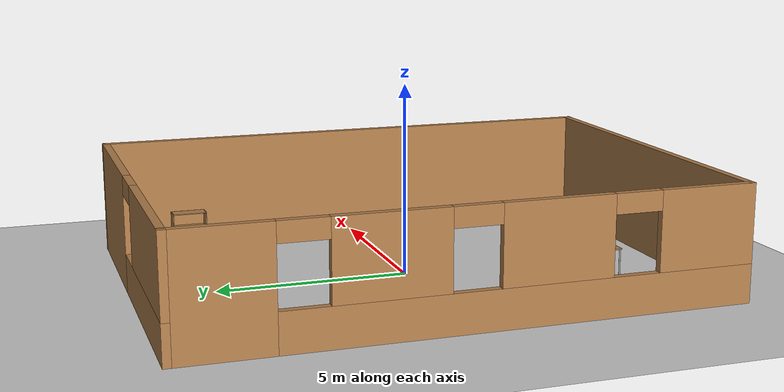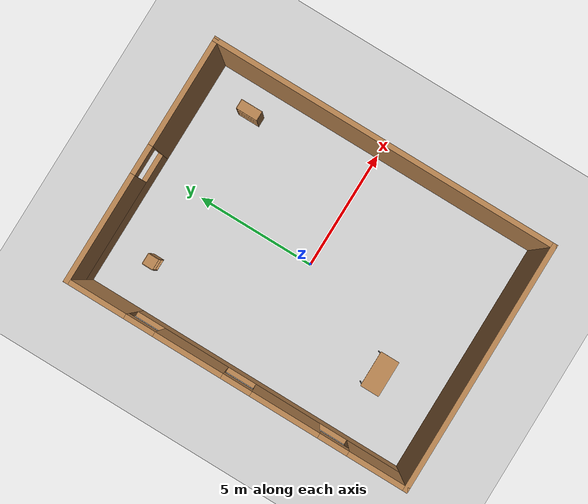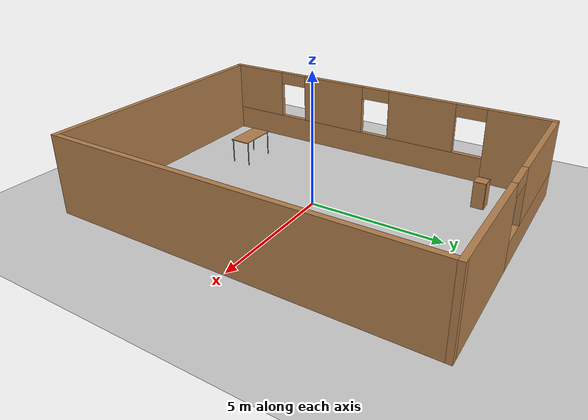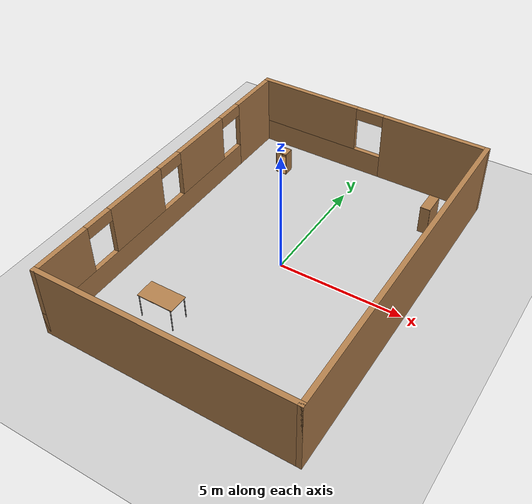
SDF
<sdf version="1.7">
 <world name="default">
  <light name="sun" type="directional">
   <pose>0 0 10 0 -0 0</pose>
   <diffuse>0.8 0.8 0.8 1</diffuse>
   <specular>0.2 0.2 0.2 1</specular>
   <attenuation>
    <range>1000</range>
    <constant>0.9</constant>
    <linear>0.01</linear>
    <quadratic>0.001</quadratic>
   </attenuation>
   <direction>-0.5 0.1 -0.9</direction>
   <spot><inner_angle>0</inner_angle><outer_angle>0</outer_angle><falloff>0</falloff></spot>
  </light>
  <model name="ground_plane">
   <static>1</static>
   <link name="link">
    <collision name="collision">
     <geometry><plane><normal>0 0 1</normal><size>100 100</size></plane></geometry>
     <surface>
      <contact><collide_bitmask>65535</collide_bitmask></contact>
      <friction><ode><mu>100</mu><mu2>50</mu2></ode></friction>
     </surface>
    </collision>
    <visual name="visual">
     <cast_shadows>0</cast_shadows>
     <geometry><plane><normal>0 0 1</normal><size>100 100</size></plane></geometry>
     <material>
      <script><uri>file://media/materials/scripts/gazebo.material</uri><name>Gazebo/Grey</name></script>
     </material>
    </visual>
   </link>
  </model>
  <gravity>0 0 -9.8</gravity>
  <magnetic_field>6e-06 2.3e-05 -4.2e-05</magnetic_field>
  <atmosphere type="adiabatic"/>
  <physics type="ode">
   <max_step_size>0.001</max_step_size>
   <real_time_factor>1</real_time_factor>
   <real_time_update_rate>1000</real_time_update_rate>
  </physics>
  <scene><ambient>0.4 0.4 0.4 1</ambient><background>0.7 0.7 0.7 1</background><shadows>1</shadows></scene>
  <audio><device>default</device></audio>
  <spherical_coordinates>
   <surface_model>EARTH_WGS84</surface_model>
   <latitude_deg>0</latitude_deg>
   <longitude_deg>0</longitude_deg>
   <elevation>0</elevation>
   <heading_deg>0</heading_deg>
  </spherical_coordinates>
  <model name="class_room">
   <link name="Wall_5">
    <pose>0 7 0 0 -0 3.14159</pose>
    <visual name="Wall_5_Visual_0">
     <pose>-2.85 0 1.5 0 -0 0</pose>
     <geometry><box><size>4.5 0.2 3</size></box></geometry>
     <material>
      <script><uri>file://media/materials/scripts/gazebo.material</uri><name>Gazebo/Wood</name></script>
      <ambient>1 1 1 1</ambient>
     </material>
     <meta><layer>0</layer></meta>
    </visual>
    <collision name="Wall_5_Collision_0">
     <geometry><box><size>4.5 0.2 3</size></box></geometry>
     <pose>-2.85 0 1.5 0 -0 0</pose>
    </collision>
    <visual name="Wall_5_Visual_1">
     <pose>2.25 0 0.5 0 -0 0</pose>
     <geometry><box><size>5.7 0.2 1</size></box></geometry>
     <material>
      <script><uri>file://media/materials/scripts/gazebo.material</uri><name>Gazebo/Wood</name></script>
      <ambient>1 1 1 1</ambient>
     </material>
     <meta><layer>0</layer></meta>
    </visual>
    <collision name="Wall_5_Collision_1">
     <geometry><box><size>5.7 0.2 1</size></box></geometry>
     <pose>2.25 0 0.5 0 -0 0</pose>
    </collision>
    <visual name="Wall_5_Visual_2">
     <pose>2.85 0 2 0 -0 0</pose>
     <geometry><box><size>4.5 0.2 2</size></box></geometry>
     <material>
      <script><uri>file://media/materials/scripts/gazebo.material</uri><name>Gazebo/Wood</name></script>
      <ambient>1 1 1 1</ambient>
     </material>
     <meta><layer>0</layer></meta>
    </visual>
    <collision name="Wall_5_Collision_2">
     <geometry><box><size>4.5 0.2 2</size></box></geometry>
     <pose>2.85 0 2 0 -0 0</pose>
    </collision>
    <visual name="Wall_5_Visual_3">
     <pose>0 0 2.75 0 -0 0</pose>
     <geometry><box><size>1.2 0.2 0.5</size></box></geometry>
     <material>
      <script><uri>file://media/materials/scripts/gazebo.material</uri><name>Gazebo/Wood</name></script>
      <ambient>1 1 1 1</ambient>
     </material>
     <meta><layer>0</layer></meta>
    </visual>
    <collision name="Wall_5_Collision_3">
     <geometry><box><size>1.2 0.2 0.5</size></box></geometry>
     <pose>0 0 2.75 0 -0 0</pose>
    </collision>
   </link>
   <link name="Wall_6">
    <pose>-5 0 0 0 -0 -1.5708</pose>
    <visual name="Wall_6_Visual_0">
     <pose>-5.85 0 1.5 0 -0 0</pose>
     <geometry><box><size>2.5 0.2 3</size></box></geometry>
     <material>
      <script><uri>file://media/materials/scripts/gazebo.material</uri><name>Gazebo/Wood</name></script>
      <ambient>1 1 1 1</ambient>
     </material>
     <meta><layer>0</layer></meta>
    </visual>
    <collision name="Wall_6_Collision_0">
     <geometry><box><size>2.5 0.2 3</size></box></geometry>
     <pose>-5.85 0 1.5 0 -0 0</pose>
    </collision>
    <visual name="Wall_6_Visual_1">
     <pose>1.25 0 0.5 0 -0 0</pose>
     <geometry><box><size>11.7 0.2 1</size></box></geometry>
     <material>
      <script><uri>file://media/materials/scripts/gazebo.material</uri><name>Gazebo/Wood</name></script>
      <ambient>1 1 1 1</ambient>
     </material>
     <meta><layer>0</layer></meta>
    </visual>
    <collision name="Wall_6_Collision_1">
     <geometry><box><size>11.7 0.2 1</size></box></geometry>
     <pose>1.25 0 0.5 0 -0 0</pose>
    </collision>
    <visual name="Wall_6_Visual_2">
     <pose>-2 0 2 0 -0 0</pose>
     <geometry><box><size>2.8 0.2 2</size></box></geometry>
     <material>
      <script><uri>file://media/materials/scripts/gazebo.material</uri><name>Gazebo/Wood</name></script>
      <ambient>1 1 1 1</ambient>
     </material>
     <meta><layer>0</layer></meta>
    </visual>
    <collision name="Wall_6_Collision_2">
     <geometry><box><size>2.8 0.2 2</size></box></geometry>
     <pose>-2 0 2 0 -0 0</pose>
    </collision>
    <visual name="Wall_6_Visual_3">
     <pose>2 0 2 0 -0 0</pose>
     <geometry><box><size>2.8 0.2 2</size></box></geometry>
     <material>
      <script><uri>file://media/materials/scripts/gazebo.material</uri><name>Gazebo/Wood</name></script>
      <ambient>1 1 1 1</ambient>
     </material>
     <meta><layer>0</layer></meta>
    </visual>
    <collision name="Wall_6_Collision_3">
     <geometry><box><size>2.8 0.2 2</size></box></geometry>
     <pose>2 0 2 0 -0 0</pose>
    </collision>
    <visual name="Wall_6_Visual_4">
     <pose>5.85 0 2 0 -0 0</pose>
     <geometry><box><size>2.5 0.2 2</size></box></geometry>
     <material>
      <script><uri>file://media/materials/scripts/gazebo.material</uri><name>Gazebo/Wood</name></script>
      <ambient>1 1 1 1</ambient>
     </material>
     <meta><layer>0</layer></meta>
    </visual>
    <collision name="Wall_6_Collision_4">
     <geometry><box><size>2.5 0.2 2</size></box></geometry>
     <pose>5.85 0 2 0 -0 0</pose>
    </collision>
    <visual name="Wall_6_Visual_5">
     <pose>-4 0 2.75 0 -0 0</pose>
     <geometry><box><size>1.2 0.2 0.5</size></box></geometry>
     <material>
      <script><uri>file://media/materials/scripts/gazebo.material</uri><name>Gazebo/Wood</name></script>
      <ambient>1 1 1 1</ambient>
     </material>
     <meta><layer>0</layer></meta>
    </visual>
    <collision name="Wall_6_Collision_5">
     <geometry><box><size>1.2 0.2 0.5</size></box></geometry>
     <pose>-4 0 2.75 0 -0 0</pose>
    </collision>
    <visual name="Wall_6_Visual_6">
     <pose>0 0 2.75 0 -0 0</pose>
     <geometry><box><size>1.2 0.2 0.5</size></box></geometry>
     <material>
      <script><uri>file://media/materials/scripts/gazebo.material</uri><name>Gazebo/Wood</name></script>
      <ambient>1 1 1 1</ambient>
     </material>
     <meta><layer>0</layer></meta>
    </visual>
    <collision name="Wall_6_Collision_6">
     <geometry><box><size>1.2 0.2 0.5</size></box></geometry>
     <pose>0 0 2.75 0 -0 0</pose>
    </collision>
    <visual name="Wall_6_Visual_7">
     <pose>4 0 2.75 0 -0 0</pose>
     <geometry><box><size>1.2 0.2 0.5</size></box></geometry>
     <material>
      <script><uri>file://media/materials/scripts/gazebo.material</uri><name>Gazebo/Wood</name></script>
      <ambient>1 1 1 1</ambient>
     </material>
     <meta><layer>0</layer></meta>
    </visual>
    <collision name="Wall_6_Collision_7">
     <geometry><box><size>1.2 0.2 0.5</size></box></geometry>
     <pose>4 0 2.75 0 -0 0</pose>
    </collision>
   </link>
   <link name="Wall_7">
    <collision name="Wall_7_Collision">
     <geometry><box><size>10.2 0.2 3</size></box></geometry>
     <pose>0 0 1.5 0 -0 0</pose>
    </collision>
    <visual name="Wall_7_Visual">
     <pose>0 0 1.5 0 -0 0</pose>
     <geometry><box><size>10.2 0.2 3</size></box></geometry>
     <material>
      <script><uri>file://media/materials/scripts/gazebo.material</uri><name>Gazebo/Wood</name></script>
      <ambient>1 1 1 1</ambient>
     </material>
     <meta><layer>0</layer></meta>
    </visual>
    <pose>0 -7 0 0 -0 0</pose>
   </link>
   <link name="Wall_8">
    <collision name="Wall_8_Collision">
     <geometry><box><size>14.2 0.2 3</size></box></geometry>
     <pose>0 0 1.5 0 -0 0</pose>
    </collision>
    <visual name="Wall_8_Visual">
     <pose>0 0 1.5 0 -0 0</pose>
     <geometry><box><size>14.2 0.2 3</size></box></geometry>
     <material>
      <script><uri>file://media/materials/scripts/gazebo.material</uri><name>Gazebo/Wood</name></script>
      <ambient>1 1 1 1</ambient>
     </material>
     <meta><layer>0</layer></meta>
    </visual>
    <pose>5 0 0 0 -0 1.5708</pose>
   </link>
   <static>1</static>
  </model>
  <model name="cabinet">
   <static>1</static>
   <link name="cabinet_bottom_plate">
    <inertial>
     <pose>0 0 -1 0 -0 0</pose>
     <inertia><ixx>2.05</ixx><ixy>0</ixy><ixz>0</ixz><iyy>2.05</iyy><iyz>0</iyz><izz>2.05</izz></inertia>
     <mass>25</mass>
    </inertial>
    <collision name="cabinet_bottom_plate_geom">
     <pose>0 0 0.01 0 -0 0</pose>
     <geometry><box><size>0.45 0.45 0.02</size></box></geometry>
    </collision>
    <visual name="cabinet_bottom_plate_geom_visual">
     <pose>0 0 0.01 0 -0 0</pose>
     <geometry><box><size>0.45 0.45 0.02</size></box></geometry>
     <material>
      <script><uri>file://media/materials/scripts/gazebo.material</uri><name>Gazebo/Wood</name></script>
     </material>
    </visual>
    <collision name="cabinet_bottom_plate_geom_cabinet_back_plate">
     <pose>0.235 0 0.51 0 -0 0</pose>
     <geometry><box><size>0.02 0.45 1.02</size></box></geometry>
    </collision>
    <visual name="cabinet_bottom_plate_geom_cabinet_back_plate_visual">
     <pose>0.235 0 0.51 0 -0 0</pose>
     <geometry><box><size>0.02 0.45 1.02</size></box></geometry>
     <material>
      <script><uri>file://media/materials/scripts/gazebo.material</uri><name>Gazebo/Wood</name></script>
     </material>
    </visual>
    <collision name="cabinet_bottom_plate_geom_cabinet_left_plate">
     <pose>0 0.235 0.51 0 -0 0</pose>
     <geometry><box><size>0.45 0.02 1.02</size></box></geometry>
    </collision>
    <visual name="cabinet_bottom_plate_geom_cabinet_left_plate_visual">
     <pose>0 0.235 0.51 0 -0 0</pose>
     <geometry><box><size>0.45 0.02 1.02</size></box></geometry>
     <material>
      <script><uri>file://media/materials/scripts/gazebo.material</uri><name>Gazebo/Wood</name></script>
     </material>
    </visual>
    <collision name="cabinet_bottom_plate_geom_cabinet_middle_plate">
     <pose>0 0 0.51 0 -0 0</pose>
     <geometry><box><size>0.45 0.45 0.02</size></box></geometry>
    </collision>
    <visual name="cabinet_bottom_plate_geom_cabinet_middle_plate_visual">
     <pose>0 0 0.51 0 -0 0</pose>
     <geometry><box><size>0.45 0.45 0.02</size></box></geometry>
     <material>
      <script><uri>file://media/materials/scripts/gazebo.material</uri><name>Gazebo/Wood</name></script>
     </material>
    </visual>
    <collision name="cabinet_bottom_plate_geom_cabinet_right_plate">
     <pose>0 -0.235 0.51 0 -0 0</pose>
     <geometry><box><size>0.45 0.02 1.02</size></box></geometry>
    </collision>
    <visual name="cabinet_bottom_plate_geom_cabinet_right_plate_visual">
     <pose>0 -0.235 0.51 0 -0 0</pose>
     <geometry><box><size>0.45 0.02 1.02</size></box></geometry>
     <material>
      <script><uri>file://media/materials/scripts/gazebo.material</uri><name>Gazebo/Wood</name></script>
     </material>
    </visual>
    <collision name="cabinet_bottom_plate_geom_cabinet_top_plate">
     <pose>0 0 1.01 0 -0 0</pose>
     <geometry><box><size>0.45 0.45 0.02</size></box></geometry>
    </collision>
    <visual name="cabinet_bottom_plate_geom_cabinet_top_plate_visual">
     <pose>0 0 1.01 0 -0 0</pose>
     <geometry><box><size>0.45 0.45 0.02</size></box></geometry>
     <material>
      <script><uri>file://media/materials/scripts/gazebo.material</uri><name>Gazebo/Wood</name></script>
     </material>
    </visual>
   </link>
   <pose>-3.05732 5.18977 0 0 -0 1.56377</pose>
  </model>
  <model name="table">
   <static>1</static>
   <link name="link">
    <collision name="surface">
     <pose>0 0 1 0 -0 0</pose>
     <geometry><box><size>1.5 0.8 0.03</size></box></geometry>
     <surface><friction><ode><mu>0.6</mu><mu2>0.6</mu2></ode></friction></surface>
    </collision>
    <visual name="visual1">
     <pose>0 0 1 0 -0 0</pose>
     <geometry><box><size>1.5 0.8 0.03</size></box></geometry>
     <material>
      <script><uri>file://media/materials/scripts/gazebo.material</uri><name>Gazebo/Wood</name></script>
     </material>
    </visual>
    <collision name="collision8">
     <pose>0.68 0.38 0.5 0 -0 0</pose>
     <geometry><cylinder><radius>0.02</radius><length>1</length></cylinder></geometry>
    </collision>
    <visual name="visual8">
     <pose>0.68 0.38 0.5 0 -0 0</pose>
     <geometry><cylinder><radius>0.02</radius><length>1</length></cylinder></geometry>
     <material>
      <script><uri>file://media/materials/scripts/gazebo.material</uri><name>Gazebo/Grey</name></script>
     </material>
    </visual>
    <collision name="collision9">
     <pose>0.68 -0.38 0.5 0 -0 0</pose>
     <geometry><cylinder><radius>0.02</radius><length>1</length></cylinder></geometry>
    </collision>
    <visual name="visual9">
     <pose>0.68 -0.38 0.5 0 -0 0</pose>
     <geometry><cylinder><radius>0.02</radius><length>1</length></cylinder></geometry>
     <material>
      <script><uri>file://media/materials/scripts/gazebo.material</uri><name>Gazebo/Grey</name></script>
     </material>
    </visual>
    <collision name="collision10">
     <pose>-0.68 -0.38 0.5 0 -0 0</pose>
     <geometry><cylinder><radius>0.02</radius><length>1</length></cylinder></geometry>
    </collision>
    <visual name="visual10">
     <pose>-0.68 -0.38 0.5 0 -0 0</pose>
     <geometry><cylinder><radius>0.02</radius><length>1</length></cylinder></geometry>
     <material>
      <script><uri>file://media/materials/scripts/gazebo.material</uri><name>Gazebo/Grey</name></script>
     </material>
    </visual>
    <collision name="collision11">
     <pose>-0.68 0.38 0.5 0 -0 0</pose>
     <geometry><cylinder><radius>0.02</radius><length>1</length></cylinder></geometry>
    </collision>
    <visual name="visual11">
     <pose>-0.68 0.38 0.5 0 -0 0</pose>
     <geometry><cylinder><radius>0.02</radius><length>1</length></cylinder></geometry>
     <material>
      <script><uri>file://media/materials/scripts/gazebo.material</uri><name>Gazebo/Grey</name></script>
     </material>
    </visual>
   </link>
   <pose>-2.14946 -4.37401 0 0 -0 0</pose>
  </model>
  <model name="bookshelf">
   <static>1</static>
   <link name="link">
    <inertial><mass>1</mass></inertial>
    <collision name="back">
     <pose>0 0.005 0.6 0 -0 0</pose>
     <geometry><box><size>0.9 0.01 1.2</size></box></geometry>
    </collision>
    <visual name="visual1">
     <pose>0 0.005 0.6 0 -0 0</pose>
     <geometry><box><size>0.9 0.01 1.2</size></box></geometry>
     <material>
      <script><uri>file://media/materials/scripts/gazebo.material</uri><name>Gazebo/Wood</name></script>
     </material>
    </visual>
    <collision name="left_side">
     <pose>0.45 -0.195 0.6 0 -0 0</pose>
     <geometry><box><size>0.02 0.4 1.2</size></box></geometry>
    </collision>
    <visual name="visual2">
     <pose>0.45 -0.195 0.6 0 -0 0</pose>
     <geometry><box><size>0.02 0.4 1.2</size></box></geometry>
     <material>
      <script><uri>file://media/materials/scripts/gazebo.material</uri><name>Gazebo/Wood</name></script>
     </material>
    </visual>
    <collision name="right_side">
     <pose>-0.45 -0.195 0.6 0 -0 0</pose>
     <geometry><box><size>0.02 0.4 1.2</size></box></geometry>
    </collision>
    <visual name="visual3">
     <pose>-0.45 -0.195 0.6 0 -0 0</pose>
     <geometry><box><size>0.02 0.4 1.2</size></box></geometry>
     <material>
      <script><uri>file://media/materials/scripts/gazebo.material</uri><name>Gazebo/Wood</name></script>
     </material>
    </visual>
    <collision name="bottom">
     <pose>0 -0.195 0.03 0 -0 0</pose>
     <geometry><box><size>0.88 0.4 0.06</size></box></geometry>
    </collision>
    <visual name="visual4">
     <pose>0 -0.195 0.03 0 -0 0</pose>
     <geometry><box><size>0.88 0.4 0.06</size></box></geometry>
     <material>
      <script><uri>file://media/materials/scripts/gazebo.material</uri><name>Gazebo/Wood</name></script>
     </material>
    </visual>
    <collision name="top">
     <pose>0 -0.195 1.19 0 -0 0</pose>
     <geometry><box><size>0.88 0.4 0.02</size></box></geometry>
    </collision>
    <visual name="visual5">
     <pose>0 -0.195 1.19 0 -0 0</pose>
     <geometry><box><size>0.88 0.4 0.02</size></box></geometry>
     <material>
      <script><uri>file://media/materials/scripts/gazebo.material</uri><name>Gazebo/Wood</name></script>
     </material>
    </visual>
    <collision name="low_shelf">
     <pose>0 -0.195 0.43 0 -0 0</pose>
     <geometry><box><size>0.88 0.4 0.02</size></box></geometry>
    </collision>
    <visual name="visual6">
     <pose>0 -0.195 0.43 0 -0 0</pose>
     <geometry><box><size>0.88 0.4 0.02</size></box></geometry>
     <material>
      <script><uri>file://media/materials/scripts/gazebo.material</uri><name>Gazebo/Wood</name></script>
     </material>
    </visual>
    <collision name="high_shelf">
     <pose>0 -0.195 0.8 0 -0 0</pose>
     <geometry><box><size>0.88 0.4 0.02</size></box></geometry>
    </collision>
    <visual name="visual7">
     <pose>0 -0.195 0.8 0 -0 0</pose>
     <geometry><box><size>0.88 0.4 0.02</size></box></geometry>
     <material>
      <script><uri>file://media/materials/scripts/gazebo.material</uri><name>Gazebo/Wood</name></script>
     </material>
    </visual>
   </link>
   <pose>3.9346 4.99923 0 0 0 -1.57</pose>
  </model>
 </world>
</sdf>
